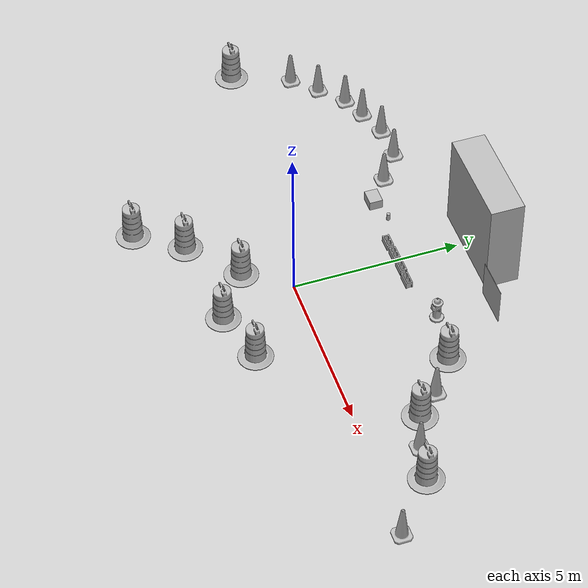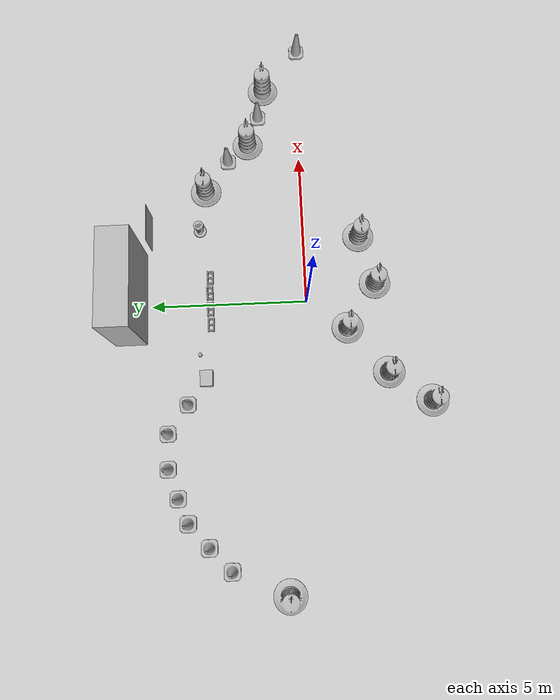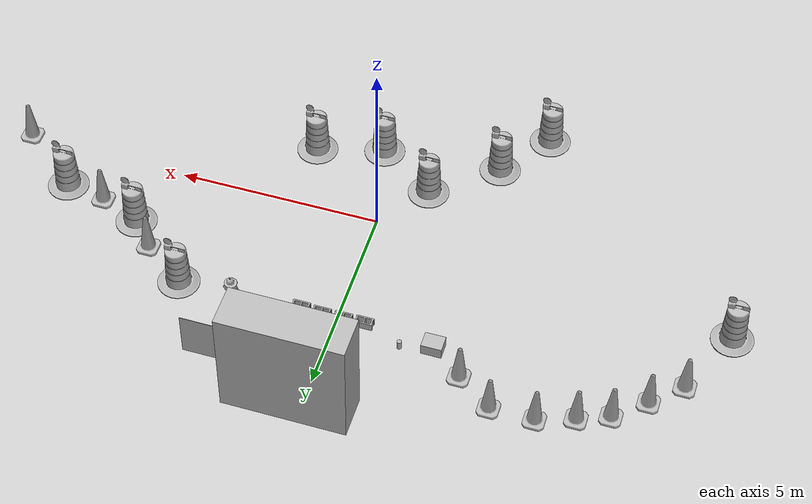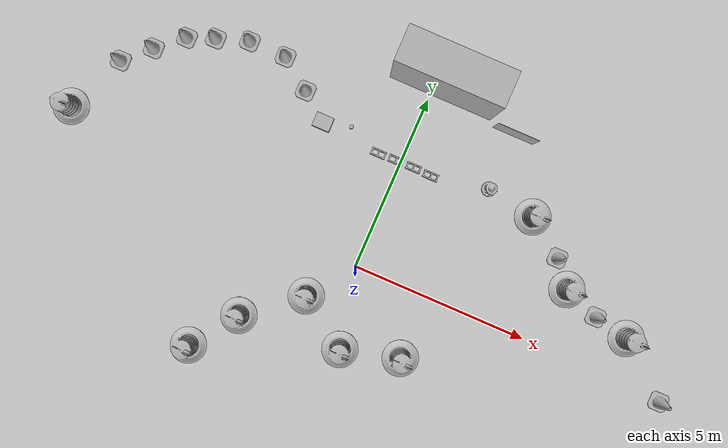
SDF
<sdf version="1.7">
 <world name="default">
  <light name="sun" type="directional">
   <pose>0 0 10 0 -0 0</pose>
   <diffuse>0.8 0.8 0.8 1</diffuse>
   <specular>0.2 0.2 0.2 1</specular>
   <attenuation>
    <range>1000</range>
    <constant>0.9</constant>
    <linear>0.01</linear>
    <quadratic>0.001</quadratic>
   </attenuation>
   <direction>-0.5 0.1 -0.9</direction>
   <spot><inner_angle>0</inner_angle><outer_angle>0</outer_angle><falloff>0</falloff></spot>
  </light>
  <model name="ground_plane">
   <static>1</static>
   <link name="link">
    <collision name="collision">
     <geometry><plane><normal>0 0 1</normal><size>100 100</size></plane></geometry>
     <surface><friction><ode><mu>100</mu><mu2>50</mu2></ode></friction></surface>
    </collision>
    <visual name="visual">
     <cast_shadows>0</cast_shadows>
     <geometry><plane><normal>0 0 1</normal><size>100 100</size></plane></geometry>
     <material>
      <script><uri>file://media/materials/scripts/gazebo.material</uri><name>Gazebo/Grey</name></script>
     </material>
    </visual>
   </link>
  </model>
  <gravity>0 0 -9.8</gravity>
  <magnetic_field>6e-06 2.3e-05 -4.2e-05</magnetic_field>
  <atmosphere type="adiabatic"/>
  <physics type="ode">
   <max_step_size>0.001</max_step_size>
   <real_time_factor>1</real_time_factor>
   <real_time_update_rate>1000</real_time_update_rate>
  </physics>
  <scene><ambient>0.4 0.4 0.4 1</ambient><background>0.7 0.7 0.7 1</background><shadows>1</shadows></scene>
  <audio><device>default</device></audio>
  <spherical_coordinates>
   <surface_model>EARTH_WGS84</surface_model>
   <latitude_deg>0</latitude_deg>
   <longitude_deg>0</longitude_deg>
   <elevation>0</elevation>
   <heading_deg>0</heading_deg>
  </spherical_coordinates>
  <model name="Construction Cone">
   <link name="link">
    <collision name="collision">
     <geometry>
      <mesh><scale>10 10 10</scale><uri>model://construction_cone/meshes/construction_cone.dae</uri></mesh>
     </geometry>
    </collision>
    <visual name="visual">
     <geometry>
      <mesh><scale>10 10 10</scale><uri>model://construction_cone/meshes/construction_cone.dae</uri></mesh>
     </geometry>
    </visual>
    <inertial>
     <inertia><ixx>1</ixx><ixy>0</ixy><ixz>0</ixz><iyy>1</iyy><iyz>0</iyz><izz>1</izz></inertia>
     <mass>1</mass>
    </inertial>
   </link>
   <pose>9.11606 -0.104465 -0 0 -0 0</pose>
  </model>
  <model name="Construction Barrel">
   <link name="link">
    <inertial>
     <pose>0 0 0.4 0 -0 0</pose>
     <mass>500</mass>
     <inertia><ixx>51.2096</ixx><iyy>51.2096</iyy><izz>25</izz><ixy>0</ixy><ixz>0</ixz><iyz>0</iyz></inertia>
    </inertial>
    <collision name="collision">
     <geometry><mesh><uri>model://construction_barrel/meshes/construction_barrel.dae</uri></mesh></geometry>
    </collision>
    <visual name="visual">
     <geometry><mesh><uri>model://construction_barrel/meshes/construction_barrel.dae</uri></mesh></geometry>
    </visual>
   </link>
   <pose>-8.93609 0.940711 -1e-06 3e-06 -2e-06 -3.9e-05</pose>
  </model>
  <model name="cinder_block">
   <link name="link">
    <inertial>
     <pose>0 0 0.1016 0 -0 0</pose>
     <mass>5</mass>
     <inertia>
      <ixx>0.028705</ixx>
      <ixy>0</ixy>
      <iyy>0.073708</iyy>
      <ixz>0</ixz>
      <iyz>0</iyz>
      <izz>0.06908</izz>
     </inertia>
    </inertial>
    <visual name="visual">
     <geometry><mesh><uri>model://cinder_block/meshes/cinder_block.dae</uri></mesh></geometry>
    </visual>
    <collision name="left">
     <pose>0 -0.08465 0.1016 0 -0 0</pose>
     <geometry><box><size>0.43495 0.0339 0.2032</size></box></geometry>
     <surface>
      <contact><ode><max_vel>0.1</max_vel><min_depth>0.001</min_depth></ode></contact>
      <friction><ode><mu>1</mu><mu2>1</mu2></ode></friction>
     </surface>
    </collision>
    <collision name="right">
     <pose>0 0.08465 0.1016 0 -0 0</pose>
     <geometry><box><size>0.43495 0.0339 0.2032</size></box></geometry>
     <surface>
      <contact><ode><max_vel>0.1</max_vel><min_depth>0.001</min_depth></ode></contact>
      <friction><ode><mu>1</mu><mu2>1</mu2></ode></friction>
     </surface>
    </collision>
    <collision name="front">
     <pose>0.18625 0 0.1016 0 -0 0</pose>
     <geometry><box><size>0.0339 0.1354 0.203</size></box></geometry>
     <surface>
      <contact><ode><max_vel>0.1</max_vel><min_depth>0.001</min_depth></ode></contact>
      <friction><ode><mu>1</mu><mu2>1</mu2></ode></friction>
     </surface>
    </collision>
    <collision name="middle">
     <pose>0 0 0.1016 0 -0 0</pose>
     <geometry><box><size>0.0339 0.1354 0.203</size></box></geometry>
     <surface>
      <contact><ode><max_vel>0.1</max_vel><min_depth>0.001</min_depth></ode></contact>
      <friction><ode><mu>1</mu><mu2>1</mu2></ode></friction>
     </surface>
    </collision>
    <collision name="back">
     <pose>-0.18625 0 0.1016 0 -0 0</pose>
     <geometry><box><size>0.0339 0.1354 0.203</size></box></geometry>
     <surface>
      <contact><ode><max_vel>0.1</max_vel><min_depth>0.001</min_depth></ode></contact>
      <friction><ode><mu>1</mu><mu2>1</mu2></ode></friction>
     </surface>
    </collision>
   </link>
   <pose>-0.66415 3.10366 -6e-06 -1e-06 2.9e-05 0</pose>
  </model>
  <model name="cinder_block_0">
   <link name="link">
    <inertial>
     <pose>0 0 0.1016 0 -0 0</pose>
     <mass>5</mass>
     <inertia>
      <ixx>0.028705</ixx>
      <ixy>0</ixy>
      <iyy>0.073708</iyy>
      <ixz>0</ixz>
      <iyz>0</iyz>
      <izz>0.06908</izz>
     </inertia>
    </inertial>
    <visual name="visual">
     <geometry><mesh><uri>model://cinder_block/meshes/cinder_block.dae</uri></mesh></geometry>
    </visual>
    <collision name="left">
     <pose>0 -0.08465 0.1016 0 -0 0</pose>
     <geometry><box><size>0.43495 0.0339 0.2032</size></box></geometry>
     <surface>
      <contact><ode><max_vel>0.1</max_vel><min_depth>0.001</min_depth></ode></contact>
      <friction><ode><mu>1</mu><mu2>1</mu2></ode></friction>
     </surface>
    </collision>
    <collision name="right">
     <pose>0 0.08465 0.1016 0 -0 0</pose>
     <geometry><box><size>0.43495 0.0339 0.2032</size></box></geometry>
     <surface>
      <contact><ode><max_vel>0.1</max_vel><min_depth>0.001</min_depth></ode></contact>
      <friction><ode><mu>1</mu><mu2>1</mu2></ode></friction>
     </surface>
    </collision>
    <collision name="front">
     <pose>0.18625 0 0.1016 0 -0 0</pose>
     <geometry><box><size>0.0339 0.1354 0.203</size></box></geometry>
     <surface>
      <contact><ode><max_vel>0.1</max_vel><min_depth>0.001</min_depth></ode></contact>
      <friction><ode><mu>1</mu><mu2>1</mu2></ode></friction>
     </surface>
    </collision>
    <collision name="middle">
     <pose>0 0 0.1016 0 -0 0</pose>
     <geometry><box><size>0.0339 0.1354 0.203</size></box></geometry>
     <surface>
      <contact><ode><max_vel>0.1</max_vel><min_depth>0.001</min_depth></ode></contact>
      <friction><ode><mu>1</mu><mu2>1</mu2></ode></friction>
     </surface>
    </collision>
    <collision name="back">
     <pose>-0.18625 0 0.1016 0 -0 0</pose>
     <geometry><box><size>0.0339 0.1354 0.203</size></box></geometry>
     <surface>
      <contact><ode><max_vel>0.1</max_vel><min_depth>0.001</min_depth></ode></contact>
      <friction><ode><mu>1</mu><mu2>1</mu2></ode></friction>
     </surface>
    </collision>
   </link>
   <pose>-0.151766 3.11917 -6e-06 -1e-06 2.8e-05 -0</pose>
  </model>
  <model name="cinder_block_1">
   <link name="link">
    <inertial>
     <pose>0 0 0.1016 0 -0 0</pose>
     <mass>5</mass>
     <inertia>
      <ixx>0.028705</ixx>
      <ixy>0</ixy>
      <iyy>0.073708</iyy>
      <ixz>0</ixz>
      <iyz>0</iyz>
      <izz>0.06908</izz>
     </inertia>
    </inertial>
    <visual name="visual">
     <geometry><mesh><uri>model://cinder_block/meshes/cinder_block.dae</uri></mesh></geometry>
    </visual>
    <collision name="left">
     <pose>0 -0.08465 0.1016 0 -0 0</pose>
     <geometry><box><size>0.43495 0.0339 0.2032</size></box></geometry>
     <surface>
      <contact><ode><max_vel>0.1</max_vel><min_depth>0.001</min_depth></ode></contact>
      <friction><ode><mu>1</mu><mu2>1</mu2></ode></friction>
     </surface>
    </collision>
    <collision name="right">
     <pose>0 0.08465 0.1016 0 -0 0</pose>
     <geometry><box><size>0.43495 0.0339 0.2032</size></box></geometry>
     <surface>
      <contact><ode><max_vel>0.1</max_vel><min_depth>0.001</min_depth></ode></contact>
      <friction><ode><mu>1</mu><mu2>1</mu2></ode></friction>
     </surface>
    </collision>
    <collision name="front">
     <pose>0.18625 0 0.1016 0 -0 0</pose>
     <geometry><box><size>0.0339 0.1354 0.203</size></box></geometry>
     <surface>
      <contact><ode><max_vel>0.1</max_vel><min_depth>0.001</min_depth></ode></contact>
      <friction><ode><mu>1</mu><mu2>1</mu2></ode></friction>
     </surface>
    </collision>
    <collision name="middle">
     <pose>0 0 0.1016 0 -0 0</pose>
     <geometry><box><size>0.0339 0.1354 0.203</size></box></geometry>
     <surface>
      <contact><ode><max_vel>0.1</max_vel><min_depth>0.001</min_depth></ode></contact>
      <friction><ode><mu>1</mu><mu2>1</mu2></ode></friction>
     </surface>
    </collision>
    <collision name="back">
     <pose>-0.18625 0 0.1016 0 -0 0</pose>
     <geometry><box><size>0.0339 0.1354 0.203</size></box></geometry>
     <surface>
      <contact><ode><max_vel>0.1</max_vel><min_depth>0.001</min_depth></ode></contact>
      <friction><ode><mu>1</mu><mu2>1</mu2></ode></friction>
     </surface>
    </collision>
   </link>
   <pose>0.375366 3.1257 -6e-06 -1e-06 2.8e-05 -0</pose>
  </model>
  <model name="cinder_block_2">
   <link name="link">
    <inertial>
     <pose>0 0 0.1016 0 -0 0</pose>
     <mass>5</mass>
     <inertia>
      <ixx>0.028705</ixx>
      <ixy>0</ixy>
      <iyy>0.073708</iyy>
      <ixz>0</ixz>
      <iyz>0</iyz>
      <izz>0.06908</izz>
     </inertia>
    </inertial>
    <visual name="visual">
     <geometry><mesh><uri>model://cinder_block/meshes/cinder_block.dae</uri></mesh></geometry>
    </visual>
    <collision name="left">
     <pose>0 -0.08465 0.1016 0 -0 0</pose>
     <geometry><box><size>0.43495 0.0339 0.2032</size></box></geometry>
     <surface>
      <contact><ode><max_vel>0.1</max_vel><min_depth>0.001</min_depth></ode></contact>
      <friction><ode><mu>1</mu><mu2>1</mu2></ode></friction>
     </surface>
    </collision>
    <collision name="right">
     <pose>0 0.08465 0.1016 0 -0 0</pose>
     <geometry><box><size>0.43495 0.0339 0.2032</size></box></geometry>
     <surface>
      <contact><ode><max_vel>0.1</max_vel><min_depth>0.001</min_depth></ode></contact>
      <friction><ode><mu>1</mu><mu2>1</mu2></ode></friction>
     </surface>
    </collision>
    <collision name="front">
     <pose>0.18625 0 0.1016 0 -0 0</pose>
     <geometry><box><size>0.0339 0.1354 0.203</size></box></geometry>
     <surface>
      <contact><ode><max_vel>0.1</max_vel><min_depth>0.001</min_depth></ode></contact>
      <friction><ode><mu>1</mu><mu2>1</mu2></ode></friction>
     </surface>
    </collision>
    <collision name="middle">
     <pose>0 0 0.1016 0 -0 0</pose>
     <geometry><box><size>0.0339 0.1354 0.203</size></box></geometry>
     <surface>
      <contact><ode><max_vel>0.1</max_vel><min_depth>0.001</min_depth></ode></contact>
      <friction><ode><mu>1</mu><mu2>1</mu2></ode></friction>
     </surface>
    </collision>
    <collision name="back">
     <pose>-0.18625 0 0.1016 0 -0 0</pose>
     <geometry><box><size>0.0339 0.1354 0.203</size></box></geometry>
     <surface>
      <contact><ode><max_vel>0.1</max_vel><min_depth>0.001</min_depth></ode></contact>
      <friction><ode><mu>1</mu><mu2>1</mu2></ode></friction>
     </surface>
    </collision>
   </link>
   <pose>0.895745 3.1041 -6e-06 -1e-06 2.8e-05 -0</pose>
  </model>
  <model name="fire_hydrant">
   <static>1</static>
   <link name="link">
    <collision name="collision">
     <geometry><mesh><uri>model://fire_hydrant/meshes/fire_hydrant.dae</uri></mesh></geometry>
    </collision>
    <visual name="visual">
     <geometry><mesh><uri>model://fire_hydrant/meshes/fire_hydrant.dae</uri></mesh></geometry>
    </visual>
   </link>
   <pose>2.50323 3.40172 0 0 -0 0</pose>
  </model>
  <model name="cardboard_box">
   <pose>-2.39206 3.28098 0.149 0 -0 0</pose>
   <link name="link">
    <inertial>
     <mass>2</mass>
     <inertia>
      <ixx>0.0416667</ixx>
      <ixy>0</ixy>
      <ixz>0</ixz>
      <iyy>0.0566667</iyy>
      <iyz>0</iyz>
      <izz>0.0683333</izz>
     </inertia>
    </inertial>
    <collision name="collision">
     <geometry><box><size>0.5 0.4 0.3</size></box></geometry>
     <surface>
      <friction><ode><mu>1</mu><mu2>1</mu2></ode></friction>
      <contact><ode><kp>1e+07</kp><kd>1</kd><min_depth>0.001</min_depth><max_vel>0.1</max_vel></ode></contact>
     </surface>
    </collision>
    <visual name="visual">
     <pose>0 0 -0.15 0 -0 0</pose>
     <geometry>
      <mesh><uri>model://cardboard_box/meshes/cardboard_box.dae</uri><scale>1.25932 1.00745 0.755591</scale></mesh>
     </geometry>
    </visual>
   </link>
  </model>
  <model name="beer">
   <link name="link">
    <pose>0 0 0.115 0 -0 0</pose>
    <inertial>
     <mass>0.39</mass>
     <inertia><ixx>0.00058</ixx><ixy>0</ixy><ixz>0</ixz><iyy>0.00058</iyy><iyz>0</iyz><izz>0.00019</izz></inertia>
    </inertial>
    <collision name="collision">
     <geometry><cylinder><radius>0.055</radius><length>0.23</length></cylinder></geometry>
    </collision>
    <visual name="visual">
     <geometry><cylinder><radius>0.055</radius><length>0.23</length></cylinder></geometry>
     <material>
      <script>
       <uri>model://beer/materials/scripts</uri>
       <uri>model://beer/materials/textures</uri>
       <name>Beer/Diffuse</name>
      </script>
     </material>
    </visual>
   </link>
   <pose>-1.62872 3.47222 -2e-06 1e-06 -0 -2.1e-05</pose>
  </model>
  <model name="brick_box_3x1x3">
   <static>1</static>
   <link name="chassis">
    <pose>0 0 1.5 0 -0 0</pose>
    <collision name="collision"><geometry><box><size>3 1 3</size></box></geometry></collision>
    <visual name="visual">
     <geometry><mesh><uri>model://brick_box_3x1x3/meshes/simple_box.dae</uri><scale>3 1 3</scale></mesh></geometry>
     <material>
      <script>
       <uri>model://brick_box_3x1x3/materials/scripts</uri>
       <uri>model://brick_box_3x1x3/materials/textures</uri>
       <name>BrickBox/Diffuse</name>
      </script>
     </material>
    </visual>
   </link>
   <pose>0.290213 5.66592 0 0 -0 0</pose>
  </model>
  <model name="Construction Cone_0">
   <link name="link">
    <collision name="collision">
     <geometry>
      <mesh><scale>10 10 10</scale><uri>model://construction_cone/meshes/construction_cone.dae</uri></mesh>
     </geometry>
    </collision>
    <visual name="visual">
     <geometry>
      <mesh><scale>10 10 10</scale><uri>model://construction_cone/meshes/construction_cone.dae</uri></mesh>
     </geometry>
    </visual>
    <inertial>
     <inertia><ixx>1</ixx><ixy>0</ixy><ixz>0</ixz><iyy>1</iyy><iyz>0</iyz><izz>1</izz></inertia>
     <mass>1</mass>
    </inertial>
   </link>
   <pose>-8.17432 2.63489 -0 0 -1e-06 0</pose>
  </model>
  <model name="Construction Cone_1">
   <link name="link">
    <collision name="collision">
     <geometry>
      <mesh><scale>10 10 10</scale><uri>model://construction_cone/meshes/construction_cone.dae</uri></mesh>
     </geometry>
    </collision>
    <visual name="visual">
     <geometry>
      <mesh><scale>10 10 10</scale><uri>model://construction_cone/meshes/construction_cone.dae</uri></mesh>
     </geometry>
    </visual>
    <inertial>
     <inertia><ixx>1</ixx><ixy>0</ixy><ixz>0</ixz><iyy>1</iyy><iyz>0</iyz><izz>1</izz></inertia>
     <mass>1</mass>
    </inertial>
   </link>
   <pose>-7.47764 3.30396 -0 0 -1e-06 0</pose>
  </model>
  <model name="Construction Cone_2">
   <link name="link">
    <collision name="collision">
     <geometry>
      <mesh><scale>10 10 10</scale><uri>model://construction_cone/meshes/construction_cone.dae</uri></mesh>
     </geometry>
    </collision>
    <visual name="visual">
     <geometry>
      <mesh><scale>10 10 10</scale><uri>model://construction_cone/meshes/construction_cone.dae</uri></mesh>
     </geometry>
    </visual>
    <inertial>
     <inertia><ixx>1</ixx><ixy>0</ixy><ixz>0</ixz><iyy>1</iyy><iyz>0</iyz><izz>1</izz></inertia>
     <mass>1</mass>
    </inertial>
   </link>
   <pose>-6.75598 3.93106 -0 0 -1e-06 0</pose>
  </model>
  <model name="Construction Cone_3">
   <link name="link">
    <collision name="collision">
     <geometry>
      <mesh><scale>10 10 10</scale><uri>model://construction_cone/meshes/construction_cone.dae</uri></mesh>
     </geometry>
    </collision>
    <visual name="visual">
     <geometry>
      <mesh><scale>10 10 10</scale><uri>model://construction_cone/meshes/construction_cone.dae</uri></mesh>
     </geometry>
    </visual>
    <inertial>
     <inertia><ixx>1</ixx><ixy>0</ixy><ixz>0</ixz><iyy>1</iyy><iyz>0</iyz><izz>1</izz></inertia>
     <mass>1</mass>
    </inertial>
   </link>
   <pose>-6.01956 4.229 -0 0 -0 0</pose>
  </model>
  <model name="Construction Barrel_0">
   <link name="link">
    <inertial>
     <pose>0 0 0.4 0 -0 0</pose>
     <mass>500</mass>
     <inertia><ixx>51.2096</ixx><iyy>51.2096</iyy><izz>25</izz><ixy>0</ixy><ixz>0</ixz><iyz>0</iyz></inertia>
    </inertial>
    <collision name="collision">
     <geometry><mesh><uri>model://construction_barrel/meshes/construction_barrel.dae</uri></mesh></geometry>
    </collision>
    <visual name="visual">
     <geometry><mesh><uri>model://construction_barrel/meshes/construction_barrel.dae</uri></mesh></geometry>
    </visual>
   </link>
   <pose>-0.929415 -1.2791 -1e-06 3e-06 -2e-06 -2.4e-05</pose>
  </model>
  <model name="Construction Cone_4">
   <link name="link">
    <collision name="collision">
     <geometry>
      <mesh><scale>10 10 10</scale><uri>model://construction_cone/meshes/construction_cone.dae</uri></mesh>
     </geometry>
    </collision>
    <visual name="visual">
     <geometry>
      <mesh><scale>10 10 10</scale><uri>model://construction_cone/meshes/construction_cone.dae</uri></mesh>
     </geometry>
    </visual>
    <inertial>
     <inertia><ixx>1</ixx><ixy>0</ixy><ixz>0</ixz><iyy>1</iyy><iyz>0</iyz><izz>1</izz></inertia>
     <mass>1</mass>
    </inertial>
   </link>
   <pose>-5.13147 4.52937 -0 0 -1e-06 0</pose>
  </model>
  <model name="Construction Cone_5">
   <link name="link">
    <collision name="collision">
     <geometry>
      <mesh><scale>10 10 10</scale><uri>model://construction_cone/meshes/construction_cone.dae</uri></mesh>
     </geometry>
    </collision>
    <visual name="visual">
     <geometry>
      <mesh><scale>10 10 10</scale><uri>model://construction_cone/meshes/construction_cone.dae</uri></mesh>
     </geometry>
    </visual>
    <inertial>
     <inertia><ixx>1</ixx><ixy>0</ixy><ixz>0</ixz><iyy>1</iyy><iyz>0</iyz><izz>1</izz></inertia>
     <mass>1</mass>
    </inertial>
   </link>
   <pose>-4.06058 4.52684 -0 0 -1e-06 0</pose>
  </model>
  <model name="Construction Cone_6">
   <link name="link">
    <collision name="collision">
     <geometry>
      <mesh><scale>10 10 10</scale><uri>model://construction_cone/meshes/construction_cone.dae</uri></mesh>
     </geometry>
    </collision>
    <visual name="visual">
     <geometry>
      <mesh><scale>10 10 10</scale><uri>model://construction_cone/meshes/construction_cone.dae</uri></mesh>
     </geometry>
    </visual>
    <inertial>
     <inertia><ixx>1</ixx><ixy>0</ixy><ixz>0</ixz><iyy>1</iyy><iyz>0</iyz><izz>1</izz></inertia>
     <mass>1</mass>
    </inertial>
   </link>
   <pose>-3.18326 3.89287 -1e-05 -1e-06 -0 -0</pose>
  </model>
  <model name="Construction Barrel_1">
   <link name="link">
    <inertial>
     <pose>0 0 0.4 0 -0 0</pose>
     <mass>500</mass>
     <inertia><ixx>51.2096</ixx><iyy>51.2096</iyy><izz>25</izz><ixy>0</ixy><ixz>0</ixz><iyz>0</iyz></inertia>
    </inertial>
    <collision name="collision">
     <geometry><mesh><uri>model://construction_barrel/meshes/construction_barrel.dae</uri></mesh></geometry>
    </collision>
    <visual name="visual">
     <geometry><mesh><uri>model://construction_barrel/meshes/construction_barrel.dae</uri></mesh></geometry>
    </visual>
   </link>
   <pose>3.92635 3.19081 -1e-06 3e-06 1e-05 -1.9e-05</pose>
  </model>
  <model name="Construction Barrel_2">
   <link name="link">
    <inertial>
     <pose>0 0 0.4 0 -0 0</pose>
     <mass>500</mass>
     <inertia><ixx>51.2096</ixx><iyy>51.2096</iyy><izz>25</izz><ixy>0</ixy><ixz>0</ixz><iyz>0</iyz></inertia>
    </inertial>
    <collision name="collision">
     <geometry><mesh><uri>model://construction_barrel/meshes/construction_barrel.dae</uri></mesh></geometry>
    </collision>
    <visual name="visual">
     <geometry><mesh><uri>model://construction_barrel/meshes/construction_barrel.dae</uri></mesh></geometry>
    </visual>
   </link>
   <pose>5.58568 1.73276 -2e-06 7e-06 4e-06 -1.8e-05</pose>
  </model>
  <model name="Construction Barrel_3">
   <link name="link">
    <inertial>
     <pose>0 0 0.4 0 -0 0</pose>
     <mass>500</mass>
     <inertia><ixx>51.2096</ixx><iyy>51.2096</iyy><izz>25</izz><ixy>0</ixy><ixz>0</ixz><iyz>0</iyz></inertia>
    </inertial>
    <collision name="collision">
     <geometry><mesh><uri>model://construction_barrel/meshes/construction_barrel.dae</uri></mesh></geometry>
    </collision>
    <visual name="visual">
     <geometry><mesh><uri>model://construction_barrel/meshes/construction_barrel.dae</uri></mesh></geometry>
    </visual>
   </link>
   <pose>7.61751 1.14422 -1e-06 -3e-06 -1e-06 -1.5e-05</pose>
  </model>
  <model name="Construction Barrel_4">
   <link name="link">
    <inertial>
     <pose>0 0 0.4 0 -0 0</pose>
     <mass>500</mass>
     <inertia><ixx>51.2096</ixx><iyy>51.2096</iyy><izz>25</izz><ixy>0</ixy><ixz>0</ixz><iyz>0</iyz></inertia>
    </inertial>
    <collision name="collision">
     <geometry><mesh><uri>model://construction_barrel/meshes/construction_barrel.dae</uri></mesh></geometry>
    </collision>
    <visual name="visual">
     <geometry><mesh><uri>model://construction_barrel/meshes/construction_barrel.dae</uri></mesh></geometry>
    </visual>
   </link>
   <pose>-3.36845 -3.80727 -1e-06 3e-06 -2e-06 -8.9e-05</pose>
  </model>
  <model name="Construction Barrel_5">
   <link name="link">
    <inertial>
     <pose>0 0 0.4 0 -0 0</pose>
     <mass>500</mass>
     <inertia><ixx>51.2096</ixx><iyy>51.2096</iyy><izz>25</izz><ixy>0</ixy><ixz>0</ixz><iyz>0</iyz></inertia>
    </inertial>
    <collision name="collision">
     <geometry><mesh><uri>model://construction_barrel/meshes/construction_barrel.dae</uri></mesh></geometry>
    </collision>
    <visual name="visual">
     <geometry><mesh><uri>model://construction_barrel/meshes/construction_barrel.dae</uri></mesh></geometry>
    </visual>
   </link>
   <pose>0.504133 -2.26252 0 1e-06 1e-06 -1.2e-05</pose>
  </model>
  <model name="Construction Cone_7">
   <link name="link">
    <collision name="collision">
     <geometry>
      <mesh><scale>10 10 10</scale><uri>model://construction_cone/meshes/construction_cone.dae</uri></mesh>
     </geometry>
    </collision>
    <visual name="visual">
     <geometry>
      <mesh><scale>10 10 10</scale><uri>model://construction_cone/meshes/construction_cone.dae</uri></mesh>
     </geometry>
    </visual>
    <inertial>
     <inertia><ixx>1</ixx><ixy>0</ixy><ixz>0</ixz><iyy>1</iyy><iyz>0</iyz><izz>1</izz></inertia>
     <mass>1</mass>
    </inertial>
   </link>
   <pose>6.60377 1.34782 -0 0 -1e-06 0</pose>
  </model>
  <model name="Construction Cone_8">
   <link name="link">
    <collision name="collision">
     <geometry>
      <mesh><scale>10 10 10</scale><uri>model://construction_cone/meshes/construction_cone.dae</uri></mesh>
     </geometry>
    </collision>
    <visual name="visual">
     <geometry>
      <mesh><scale>10 10 10</scale><uri>model://construction_cone/meshes/construction_cone.dae</uri></mesh>
     </geometry>
    </visual>
    <inertial>
     <inertia><ixx>1</ixx><ixy>0</ixy><ixz>0</ixz><iyy>1</iyy><iyz>0</iyz><izz>1</izz></inertia>
     <mass>1</mass>
    </inertial>
   </link>
   <pose>4.99923 2.41787 -0 0 -0 0</pose>
  </model>
  <model name="nist_maze_wall_120">
   <static>1</static>
   <link name="nist_maze_wall_120_link">
    <collision name="collision">
     <geometry>
      <mesh><uri>model://nist_maze_wall_120/meshes/nist_maze_wall_120.dae</uri><scale>1 1 1</scale></mesh>
     </geometry>
    </collision>
    <visual name="visual">
     <geometry>
      <mesh><uri>model://nist_maze_wall_120/meshes/nist_maze_wall_120.dae</uri><scale>1 1 1</scale></mesh>
     </geometry>
    </visual>
   </link>
   <pose>2.5352 4.42262 0 0 -0 0</pose>
  </model>
  <model name="Construction Barrel_6">
   <link name="link">
    <inertial>
     <pose>0 0 0.4 0 -0 0</pose>
     <mass>500</mass>
     <inertia><ixx>51.2096</ixx><iyy>51.2096</iyy><izz>25</izz><ixy>0</ixy><ixz>0</ixz><iyz>0</iyz></inertia>
    </inertial>
    <collision name="collision">
     <geometry><mesh><uri>model://construction_barrel/meshes/construction_barrel.dae</uri></mesh></geometry>
    </collision>
    <visual name="visual">
     <geometry><mesh><uri>model://construction_barrel/meshes/construction_barrel.dae</uri></mesh></geometry>
    </visual>
   </link>
   <pose>-2.41849 -2.50663 -1e-06 3e-06 -2e-06 -7e-06</pose>
  </model>
  <model name="Construction Barrel_7">
   <link name="link">
    <inertial>
     <pose>0 0 0.4 0 -0 0</pose>
     <mass>500</mass>
     <inertia><ixx>51.2096</ixx><iyy>51.2096</iyy><izz>25</izz><ixy>0</ixy><ixz>0</ixz><iyz>0</iyz></inertia>
    </inertial>
    <collision name="collision">
     <geometry><mesh><uri>model://construction_barrel/meshes/construction_barrel.dae</uri></mesh></geometry>
    </collision>
    <visual name="visual">
     <geometry><mesh><uri>model://construction_barrel/meshes/construction_barrel.dae</uri></mesh></geometry>
    </visual>
   </link>
   <pose>2.12727 -1.82677 -2e-06 -0 7e-06 -4e-06</pose>
  </model>
 </world>
</sdf>
